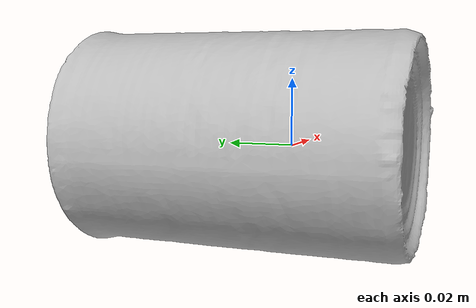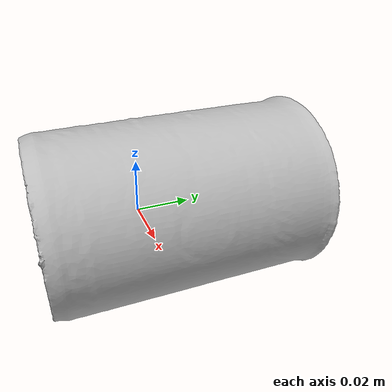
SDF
<?xml version='1.0'?>
<sdf version="1.4">
  <model name="TomatoSoup">
    <static>false</static>
    <link name="link">
      <inertial>
        <pose>0.0009365776414567448 0.013862144592814334 0.0009260902718112321 -1.7134122495196602 1.5400049134657745 3.0054645204199364</pose>
        <mass>0.03597604383441202</mass>
        <inertia>
          <ixx>4.0768841584134555e-05</ixx>
          <ixy>-1.5658181678703603e-21</ixy>
          <ixz>-2.4849332371738995e-21</ixz>
          <iyy>4.071136478750259e-05</iyy>
          <iyz>1.3278860949490672e-23</iyz>
          <izz>2.0368878503168474e-05</izz>
        </inertia>
      </inertial>
      <collision name="collision">
        <geometry>
          <mesh>
            <!-- Use a downsampled mesh for collisions -->
            <uri>model:///TomatoSoup/TomatoSoup_250_collision.obj</uri>
	        </mesh>
        </geometry>
        <surface>
      </surface>
      </collision>
      <visual name="visual">
        <geometry>
          <mesh>
            <uri>model:///TomatoSoup/TomatoSoup_25k_tex.obj</uri>
	        </mesh>
        </geometry>
        <material>
          <script>
            <uri>model:///TomatoSoup/TomatoSoup.material</uri>
            <name>TomatoSoup</name>
          </script>
        </material>
      </visual>
    </link>
  </model>
</sdf>
